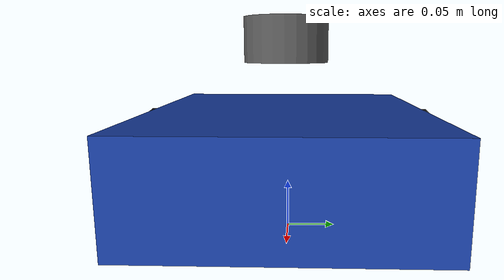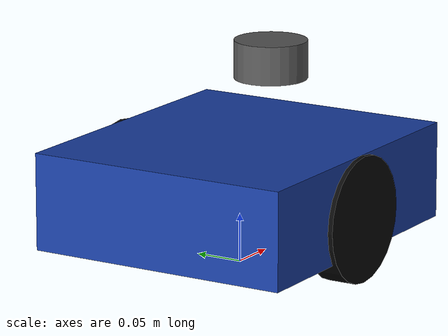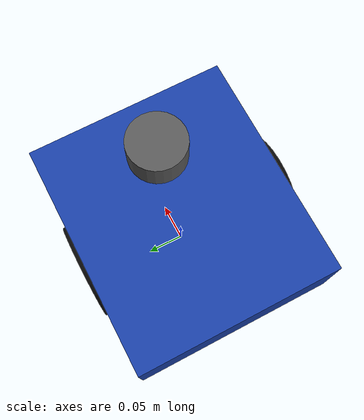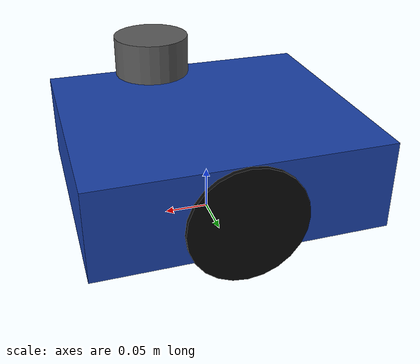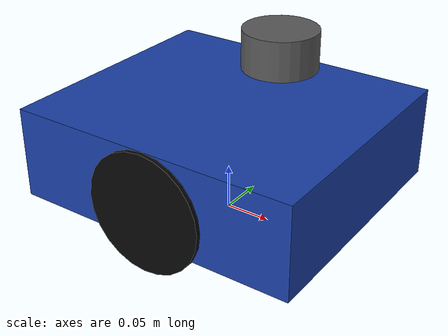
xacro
<?xml version="1.0"?>
<robot xmlns:xacro="http://www.ros.org/wiki/xacro" name="stm32_diffbot">
  <!-- Replace these measured dimensions before autonomous driving. -->
  <xacro:property name="body_length" value="0.32"/>
  <xacro:property name="body_width" value="0.28"/>
  <xacro:property name="body_height" value="0.10"/>
  <xacro:property name="body_mass" value="4.0"/>
  <xacro:property name="body_z" value="0.08"/>
  <xacro:property name="wheel_radius" value="0.065"/>
  <xacro:property name="wheel_width" value="0.030"/>
  <xacro:property name="wheel_separation" value="0.26"/>

  <material name="chassis_blue">
    <color rgba="0.10 0.25 0.65 1.0"/>
  </material>
  <material name="wheel_black">
    <color rgba="0.03 0.03 0.03 1.0"/>
  </material>
  <material name="sensor_gray">
    <color rgba="0.35 0.35 0.35 1.0"/>
  </material>

  <link name="base_footprint"/>

  <link name="base_link">
    <visual>
      <geometry>
        <box size="${body_length} ${body_width} ${body_height}"/>
      </geometry>
      <material name="chassis_blue"/>
    </visual>
    <collision>
      <geometry>
        <box size="${body_length} ${body_width} ${body_height}"/>
      </geometry>
    </collision>
    <inertial>
      <mass value="${body_mass}"/>
      <origin xyz="0 0 0"/>
      <inertia
        ixx="${body_mass * (body_width * body_width + body_height * body_height) / 12.0}"
        ixy="0" ixz="0"
        iyy="${body_mass * (body_length * body_length + body_height * body_height) / 12.0}"
        iyz="0"
        izz="${body_mass * (body_length * body_length + body_width * body_width) / 12.0}"/>
    </inertial>
  </link>

  <joint name="base_footprint_joint" type="fixed">
    <parent link="base_footprint"/>
    <child link="base_link"/>
    <origin xyz="0 0 ${body_z}" rpy="0 0 0"/>
  </joint>

  <xacro:macro name="wheel" params="side y">
    <link name="${side}_wheel_link">
      <visual>
        <origin rpy="${pi / 2.0} 0 0"/>
        <geometry>
          <cylinder radius="${wheel_radius}" length="${wheel_width}"/>
        </geometry>
        <material name="wheel_black"/>
      </visual>
    </link>
    <!-- Wheel rotation is measured on the STM32; these URDF joints only provide TF. -->
    <joint name="${side}_wheel_mount" type="fixed">
      <parent link="base_link"/>
      <child link="${side}_wheel_link"/>
      <origin xyz="0 ${y} ${wheel_radius - body_z}" rpy="0 0 0"/>
    </joint>
  </xacro:macro>

  <xacro:wheel side="left" y="${wheel_separation / 2.0}"/>
  <xacro:wheel side="right" y="${-wheel_separation / 2.0}"/>

  <link name="laser">
    <visual>
      <geometry>
        <cylinder radius="0.038" length="0.040"/>
      </geometry>
      <material name="sensor_gray"/>
    </visual>
  </link>
  <joint name="laser_joint" type="fixed">
    <parent link="base_link"/>
    <child link="laser"/>
    <!-- Measure XYZ and yaw of the actual LiDAR optical centre. -->
    <origin xyz="0.06 0 0.12" rpy="0 0 0"/>
  </joint>

  <link name="imu_link"/>
  <joint name="imu_joint" type="fixed">
    <parent link="base_link"/>
    <child link="imu_link"/>
    <!-- REP-103: X forward, Y left, Z up. Adjust rpy for the PCB mounting. -->
    <origin xyz="0 0 0.025" rpy="0 0 0"/>
  </joint>
</robot>
